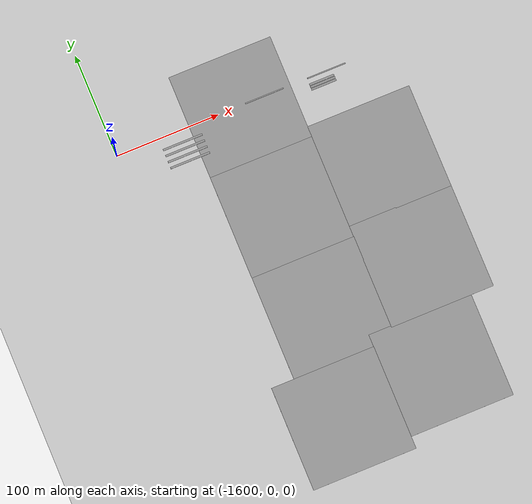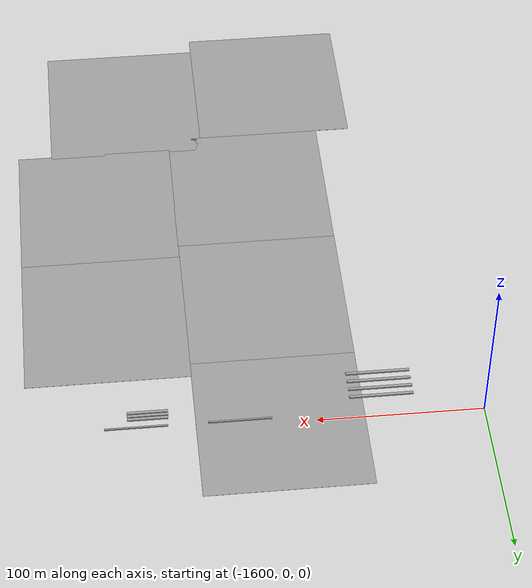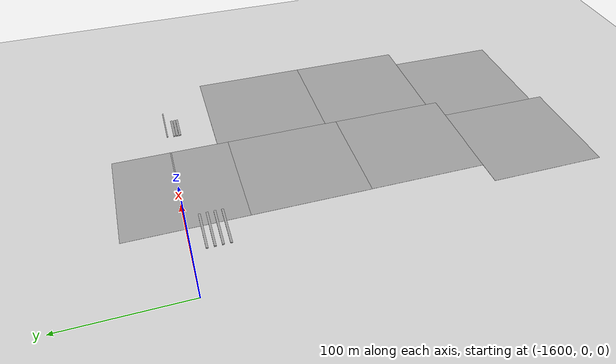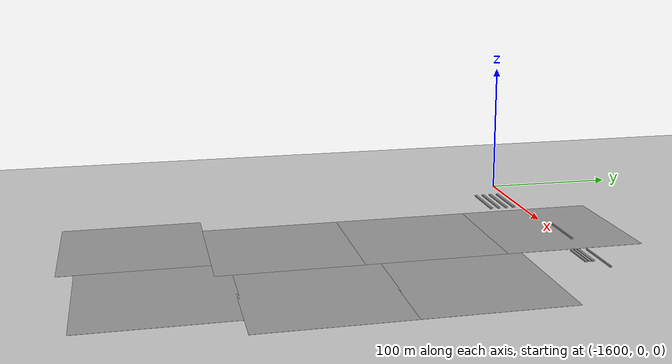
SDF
<sdf version="1.7">
 <world name="default">
  <model name="ground_plane">
   <static>1</static>
   <link name="link">
    <collision name="collision">
     <geometry><plane><normal>0 0 1</normal><size>100 100</size></plane></geometry>
     <surface><friction><ode><mu>100</mu><mu2>50</mu2></ode></friction></surface>
    </collision>
    <visual name="visual">
     <cast_shadows>0</cast_shadows>
     <geometry><plane><normal>0 0 1</normal><size>100 100</size></plane></geometry>
     <material>
      <script><uri>file://media/materials/scripts/gazebo.material</uri><name>Gazebo/Grey</name></script>
     </material>
    </visual>
   </link>
  </model>
  <model name="ground_plane_154">
   <static>1</static>
   <link name="link">
    <collision name="collision">
     <geometry><plane><normal>0 0 1</normal><size>100 100</size></plane></geometry>
     <surface>
      <contact><collide_bitmask>65535</collide_bitmask></contact>
      <friction><ode><mu>100</mu><mu2>50</mu2></ode></friction>
     </surface>
    </collision>
    <visual name="visual">
     <cast_shadows>0</cast_shadows>
     <geometry><plane><normal>0 0 1</normal><size>100 100</size></plane></geometry>
     <material>
      <script><uri>file://media/materials/scripts/gazebo.material</uri><name>Gazebo/Grey</name></script>
     </material>
    </visual>
   </link>
   <pose>-1379.25 -190.121 0 0 -0 0</pose>
  </model>
  <model name="ground_plane_155">
   <static>1</static>
   <link name="link">
    <collision name="collision">
     <geometry><plane><normal>0 0 1</normal><size>100 100</size></plane></geometry>
     <surface>
      <contact><collide_bitmask>65535</collide_bitmask></contact>
      <friction><ode><mu>100</mu><mu2>50</mu2></ode></friction>
     </surface>
    </collision>
    <visual name="visual">
     <cast_shadows>0</cast_shadows>
     <geometry><plane><normal>0 0 1</normal><size>100 100</size></plane></geometry>
     <material>
      <script><uri>file://media/materials/scripts/gazebo.material</uri><name>Gazebo/Grey</name></script>
     </material>
    </visual>
   </link>
   <pose>-1379.25 -90.8882 0 0 -0 0</pose>
  </model>
  <model name="ground_plane_162">
   <static>1</static>
   <link name="link">
    <collision name="collision">
     <geometry><plane><normal>0 0 1</normal><size>100 100</size></plane></geometry>
     <surface>
      <contact><collide_bitmask>65535</collide_bitmask></contact>
      <friction><ode><mu>100</mu><mu2>50</mu2></ode></friction>
     </surface>
    </collision>
    <visual name="visual">
     <cast_shadows>0</cast_shadows>
     <geometry><plane><normal>0 0 1</normal><size>100 100</size></plane></geometry>
     <material>
      <script><uri>file://media/materials/scripts/gazebo.material</uri><name>Gazebo/Grey</name></script>
     </material>
    </visual>
   </link>
   <pose>-1479.07 -100.421 0 0 -0 0</pose>
  </model>
  <model name="ground_plane_163">
   <static>1</static>
   <link name="link">
    <collision name="collision">
     <geometry><plane><normal>0 0 1</normal><size>100 100</size></plane></geometry>
     <surface>
      <contact><collide_bitmask>65535</collide_bitmask></contact>
      <friction><ode><mu>100</mu><mu2>50</mu2></ode></friction>
     </surface>
    </collision>
    <visual name="visual">
     <cast_shadows>0</cast_shadows>
     <geometry><plane><normal>0 0 1</normal><size>100 100</size></plane></geometry>
     <material>
      <script><uri>file://media/materials/scripts/gazebo.material</uri><name>Gazebo/Grey</name></script>
     </material>
    </visual>
   </link>
   <pose>-1478.93 -200.322 0 0 -0 0</pose>
  </model>
  <model name="ground_plane_230">
   <static>1</static>
   <link name="link">
    <collision name="collision">
     <geometry><plane><normal>0 0 1</normal><size>100 100</size></plane></geometry>
     <surface>
      <contact><collide_bitmask>65535</collide_bitmask></contact>
      <friction><ode><mu>100</mu><mu2>50</mu2></ode></friction>
     </surface>
    </collision>
    <visual name="visual">
     <cast_shadows>0</cast_shadows>
     <geometry><plane><normal>0 0 1</normal><size>100 100</size></plane></geometry>
     <material>
      <script><uri>file://media/materials/scripts/gazebo.material</uri><name>Gazebo/Grey</name></script>
     </material>
    </visual>
   </link>
   <pose>-1401.02 -288.574 0 0 -0 0</pose>
  </model>
  <model name="ground_plane_231">
   <static>1</static>
   <link name="link">
    <collision name="collision">
     <geometry><plane><normal>0 0 1</normal><size>100 100</size></plane></geometry>
     <surface>
      <contact><collide_bitmask>65535</collide_bitmask></contact>
      <friction><ode><mu>100</mu><mu2>50</mu2></ode></friction>
     </surface>
    </collision>
    <visual name="visual">
     <cast_shadows>0</cast_shadows>
     <geometry><plane><normal>0 0 1</normal><size>100 100</size></plane></geometry>
     <material>
      <script><uri>file://media/materials/scripts/gazebo.material</uri><name>Gazebo/Grey</name></script>
     </material>
    </visual>
   </link>
   <pose>-1500.82 -300.059 0 0 -0 0</pose>
  </model>
  <model name="ground_plane_161">
   <static>1</static>
   <link name="link">
    <collision name="collision">
     <geometry><plane><normal>0 0 1</normal><size>100 100</size></plane></geometry>
     <surface>
      <contact><collide_bitmask>65535</collide_bitmask></contact>
      <friction><ode><mu>100</mu><mu2>50</mu2></ode></friction>
     </surface>
    </collision>
    <visual name="visual">
     <cast_shadows>0</cast_shadows>
     <geometry><plane><normal>0 0 1</normal><size>100 100</size></plane></geometry>
     <material>
      <script><uri>file://media/materials/scripts/gazebo.material</uri><name>Gazebo/Grey</name></script>
     </material>
    </visual>
   </link>
   <pose>-1479.06 -0.771305 0 0 -0 0</pose>
  </model>
  <model name="runway_middle_strip_120ft">
   <pose>-1455 2 5 0 -0 0</pose>
   <link name="Wall_4">
    <collision name="Wall_4_Collision">
     <geometry><box><size>37.426 1 1</size></box></geometry>
     <pose>0 0 0.05 0 -0 0</pose>
    </collision>
    <visual name="Wall_4_Visual">
     <pose>0 0 0.05 0 -0 0</pose>
     <geometry><box><size>37.426 1 1</size></box></geometry>
     <material>
      <script><uri>file://media/materials/scripts/gazebo.material</uri><name>Gazebo/Grey</name></script>
      <ambient>1 1 1 1</ambient>
     </material>
     <meta><layer>0</layer></meta>
    </visual>
    <pose>0 -2.48 0 0 -0 0</pose>
   </link>
   <static>1</static>
  </model>
  <model name="runway_marker_30m_clone_2">
   <pose>-1540 -9 5 0 -0 0</pose>
   <link name="Wall_2">
    <collision name="Wall_2_Collision">
     <geometry><box><size>38.226 1.8 1</size></box></geometry>
     <pose>0 0 0.05 0 -0 0</pose>
    </collision>
    <visual name="Wall_2_Visual">
     <pose>0 0 0.05 0 -0 0</pose>
     <geometry><box><size>38.226 1.8 1</size></box></geometry>
     <material>
      <script><uri>file://media/materials/scripts/gazebo.material</uri><name>Gazebo/Grey</name></script>
      <ambient>1 1 1 1</ambient>
     </material>
     <meta><layer>0</layer></meta>
    </visual>
    <pose>0 -2.825 0 0 -0 0</pose>
   </link>
   <static>1</static>
  </model>
  <model name="runway_marker_30m_clone_3">
   <pose>-1540 -15 5 0 -0 0</pose>
   <link name="Wall_2">
    <collision name="Wall_2_Collision">
     <geometry><box><size>38.226 1.8 1</size></box></geometry>
     <pose>0 0 0.05 0 -0 0</pose>
    </collision>
    <visual name="Wall_2_Visual">
     <pose>0 0 0.05 0 -0 0</pose>
     <geometry><box><size>38.226 1.8 1</size></box></geometry>
     <material>
      <script><uri>file://media/materials/scripts/gazebo.material</uri><name>Gazebo/Grey</name></script>
      <ambient>1 1 1 1</ambient>
     </material>
     <meta><layer>0</layer></meta>
    </visual>
    <pose>0 -2.825 0 0 -0 0</pose>
   </link>
   <static>1</static>
  </model>
  <model name="runway_marker_30m_clone_4">
   <pose>-1540 -21 5 0 -0 0</pose>
   <link name="Wall_2">
    <collision name="Wall_2_Collision">
     <geometry><box><size>38.226 1.8 1</size></box></geometry>
     <pose>0 0 0.05 0 -0 0</pose>
    </collision>
    <visual name="Wall_2_Visual">
     <pose>0 0 0.05 0 -0 0</pose>
     <geometry><box><size>38.226 1.8 1</size></box></geometry>
     <material>
      <script><uri>file://media/materials/scripts/gazebo.material</uri><name>Gazebo/Grey</name></script>
      <ambient>1 1 1 1</ambient>
     </material>
     <meta><layer>0</layer></meta>
    </visual>
    <pose>0 -2.825 0 0 -0 0</pose>
   </link>
   <static>1</static>
  </model>
  <model name="runway_marker_30m_clone_5">
   <pose>-1540 -27 5 0 -0 0</pose>
   <link name="Wall_2">
    <collision name="Wall_2_Collision">
     <geometry><box><size>38.226 1.8 1</size></box></geometry>
     <pose>0 0 0.05 0 -0 0</pose>
    </collision>
    <visual name="Wall_2_Visual">
     <pose>0 0 0.05 0 -0 0</pose>
     <geometry><box><size>38.226 1.8 1</size></box></geometry>
     <material>
      <script><uri>file://media/materials/scripts/gazebo.material</uri><name>Gazebo/Grey</name></script>
      <ambient>1 1 1 1</ambient>
     </material>
     <meta><layer>0</layer></meta>
    </visual>
    <pose>0 -2.825 0 0 -0 0</pose>
   </link>
   <static>1</static>
  </model>
  <model name="runway_middle_strip_120ft_clone">
   <pose>-1394 2 5 0 -0 0</pose>
   <link name="Wall_4">
    <collision name="Wall_4_Collision">
     <geometry><box><size>37.426 1 1</size></box></geometry>
     <pose>0 0 0.05 0 -0 0</pose>
    </collision>
    <visual name="Wall_4_Visual">
     <pose>0 0 0.05 0 -0 0</pose>
     <geometry><box><size>37.426 1 1</size></box></geometry>
     <material>
      <script><uri>file://media/materials/scripts/gazebo.material</uri><name>Gazebo/Grey</name></script>
      <ambient>1 1 1 1</ambient>
     </material>
     <meta><layer>0</layer></meta>
    </visual>
    <pose>0 -2.48 0 0 -0 0</pose>
   </link>
   <static>1</static>
  </model>
  <model name="runway_touchdown_strip_22d5m_clone_1">
   <pose>-1403.25 -7.8 5 0 -0 1.5708</pose>
   <link name="Wall_6">
    <collision name="Wall_6_Collision">
     <geometry><box><size>24.15 1.8 1</size></box></geometry>
     <pose>0 0 0.05 0 -0 0</pose>
    </collision>
    <visual name="Wall_6_Visual">
     <pose>0 0 0.05 0 -0 0</pose>
     <geometry><box><size>24.15 1.8 1</size></box></geometry>
     <material>
      <script><uri>file://media/materials/scripts/gazebo.material</uri><name>Gazebo/Grey</name></script>
      <ambient>1 1 1 1</ambient>
     </material>
     <meta><layer>0</layer></meta>
    </visual>
    <pose>1.16 -2.16 0 0 -0 -1.5708</pose>
   </link>
   <static>1</static>
  </model>
  <model name="runway_touchdown_strip_22d5m_clone_0_clone">
   <pose>-1403.25 -10.2 5 0 -0 1.5708</pose>
   <link name="Wall_6">
    <collision name="Wall_6_Collision">
     <geometry><box><size>24.15 1.8 1</size></box></geometry>
     <pose>0 0 0.05 0 -0 0</pose>
    </collision>
    <visual name="Wall_6_Visual">
     <pose>0 0 0.05 0 -0 0</pose>
     <geometry><box><size>24.15 1.8 1</size></box></geometry>
     <material>
      <script><uri>file://media/materials/scripts/gazebo.material</uri><name>Gazebo/Grey</name></script>
      <ambient>1 1 1 1</ambient>
     </material>
     <meta><layer>0</layer></meta>
    </visual>
    <pose>1.16 -2.16 0 0 -0 -1.5708</pose>
   </link>
   <static>1</static>
  </model>
  <model name="runway_touchdown_strip_22d5m_clone_1_clone">
   <pose>-1403.22 -12.6 5 0 -0 1.5708</pose>
   <link name="Wall_6">
    <collision name="Wall_6_Collision">
     <geometry><box><size>24.15 1.8 1</size></box></geometry>
     <pose>0 0 0.05 0 -0 0</pose>
    </collision>
    <visual name="Wall_6_Visual">
     <pose>0 0 0.05 0 -0 0</pose>
     <geometry><box><size>24.15 1.8 1</size></box></geometry>
     <material>
      <script><uri>file://media/materials/scripts/gazebo.material</uri><name>Gazebo/Grey</name></script>
      <ambient>1 1 1 1</ambient>
     </material>
     <meta><layer>0</layer></meta>
    </visual>
    <pose>1.16 -2.16 0 0 -0 -1.5708</pose>
   </link>
   <static>1</static>
  </model>
 </world>
</sdf>
